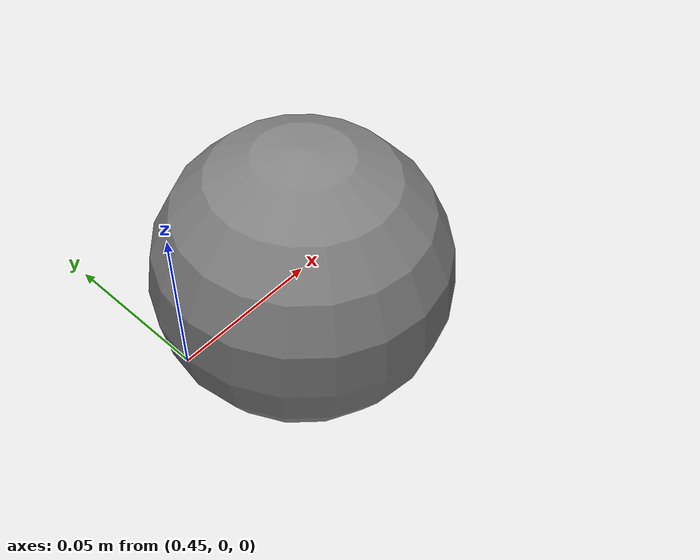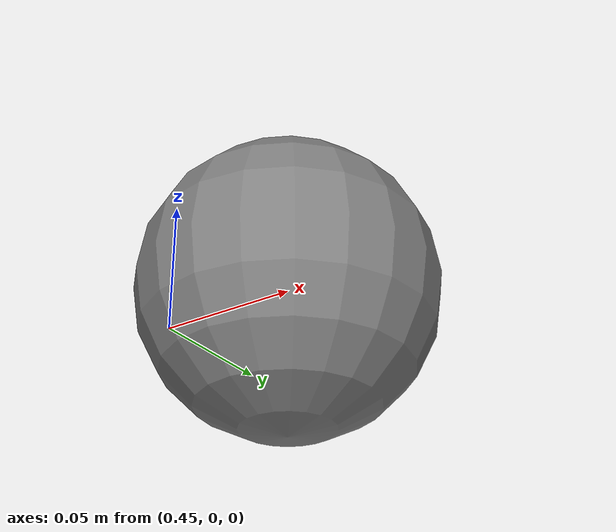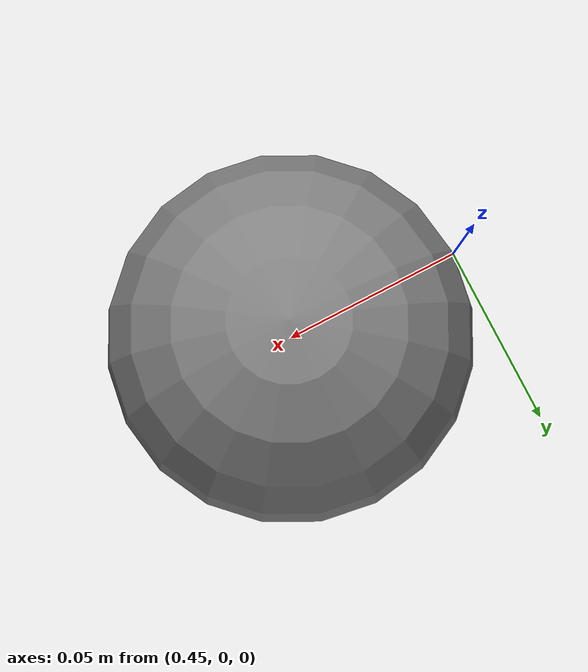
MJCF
<mujoco model="t14">
            <option gravity="0 0 0"/>
            <worldbody>
                <body name="b1" pos="0 0 0">
                    <joint name="j1" type="hinge" axis="0 0 1"/>
                    <geom name="g1" type="sphere" size="0.05" pos="0.5 0 0" mass="1"/>
                </body>
            </worldbody>
            <sensor>
                <framelinacc name="fla" objtype="geom" objname="g1"/>
            </sensor>
        </mujoco>
